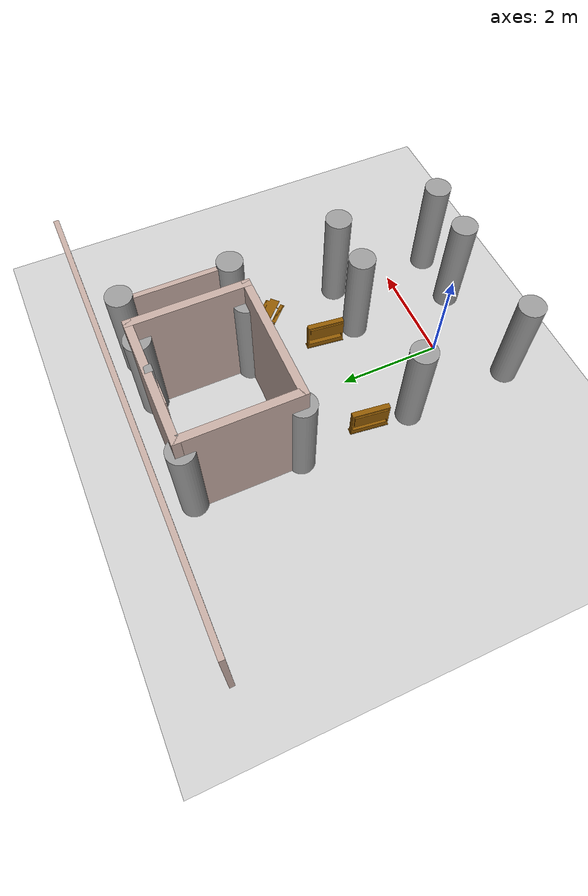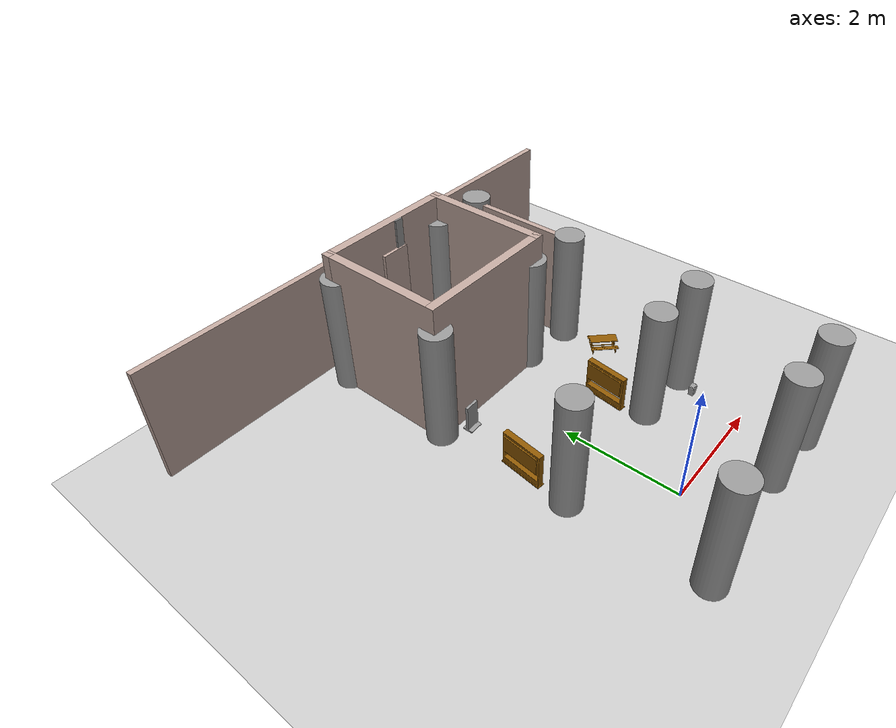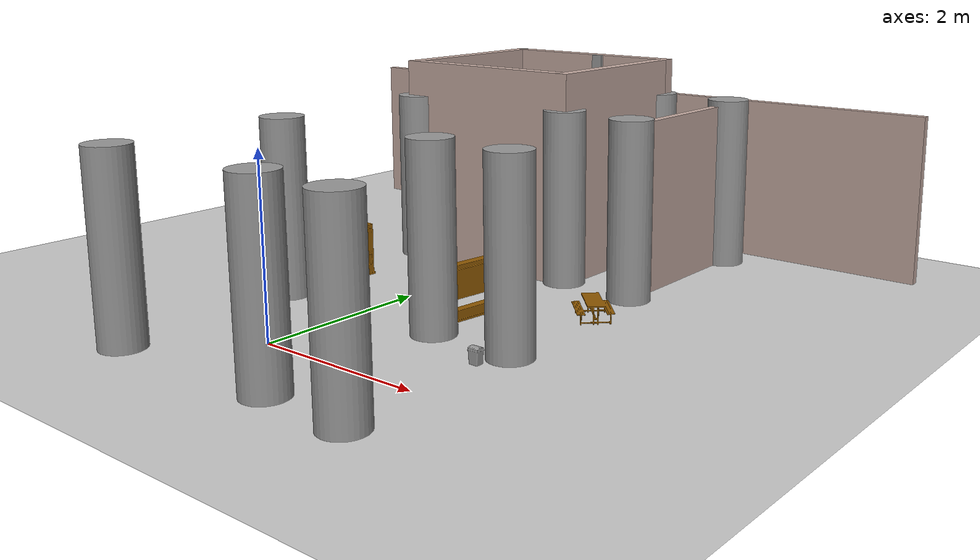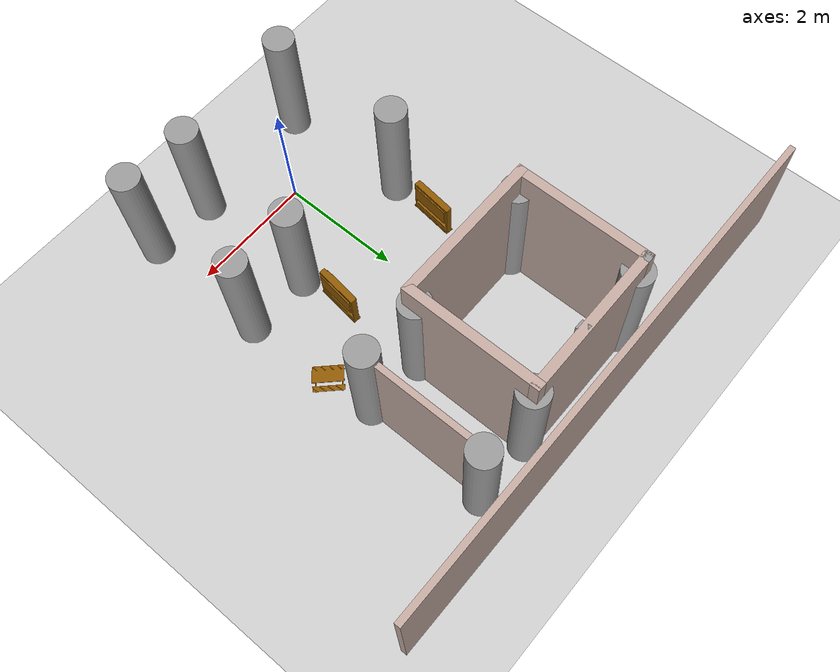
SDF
<sdf version="1.6">
 <world name="default">
  <model name="ground_plane">
   <static>1</static>
   <link name="link">
    <collision name="collision">
     <geometry><plane><normal>0 0 1</normal><size>100 100</size></plane></geometry>
     <surface>
      <contact><collide_bitmask>65535</collide_bitmask></contact>
      <friction><ode><mu>100</mu><mu2>50</mu2></ode></friction>
     </surface>
    </collision>
    <visual name="visual">
     <cast_shadows>0</cast_shadows>
     <geometry><plane><normal>0 0 1</normal><size>100 100</size></plane></geometry>
     <material>
      <script><uri>file://media/materials/scripts/gazebo.material</uri><name>Gazebo/Grey</name></script>
     </material>
    </visual>
   </link>
  </model>
  <model name="gedung_p">
   <pose>2.96636 -2.09069 0 0 -0 0</pose>
   <link name="Wall_108">
    <collision name="Wall_108_Collision">
     <geometry><box><size>2.5 0.15 2.5</size></box></geometry>
     <pose>0 0 1.25 0 -0 0</pose>
    </collision>
    <visual name="Wall_108_Visual">
     <pose>0 0 1.25 0 -0 0</pose>
     <geometry><box><size>2.5 0.15 2.5</size></box></geometry>
     <material>
      <script><uri>file://media/materials/scripts/gazebo.material</uri><name>Gazebo/Grey</name></script>
      <ambient>0.760784 0.662745 0.627451 1</ambient>
     </material>
     <meta><layer>0</layer></meta>
    </visual>
    <pose>-3.04751 7.6698 0 0 -0 0</pose>
   </link>
   <link name="Wall_119">
    <collision name="Wall_119_Collision">
     <geometry><box><size>8.7 0.1 2</size></box></geometry>
     <pose>0 0 1 0 -0 0</pose>
    </collision>
    <visual name="Wall_119_Visual">
     <pose>0 0 1 0 -0 0</pose>
     <geometry><box><size>8.7 0.1 2</size></box></geometry>
     <material>
      <script><uri>file://media/materials/scripts/gazebo.material</uri><name>Gazebo/Grey</name></script>
      <ambient>0.760784 0.662745 0.627451 1</ambient>
     </material>
     <meta><layer>0</layer></meta>
    </visual>
    <pose>-2.97151 8.1548 0 0 -0 0</pose>
   </link>
   <link name="Wall_128">
    <collision name="Wall_128_Collision">
     <geometry><box><size>2.25 0.15 2.5</size></box></geometry>
     <pose>0 0 1.25 0 -0 0</pose>
    </collision>
    <visual name="Wall_128_Visual">
     <pose>0 0 1.25 0 -0 0</pose>
     <geometry><box><size>2.25 0.15 2.5</size></box></geometry>
     <material>
      <script><uri>file://media/materials/scripts/gazebo.material</uri><name>Gazebo/Grey</name></script>
      <ambient>0.760784 0.662745 0.627451 1</ambient>
     </material>
     <meta><layer>0</layer></meta>
    </visual>
    <pose>-4.22251 6.61981 0 0 -0 -1.5708</pose>
   </link>
   <link name="Wall_129">
    <collision name="Wall_129_Collision">
     <geometry><box><size>2.5 0.15 2.5</size></box></geometry>
     <pose>0 0 1.25 0 -0 0</pose>
    </collision>
    <visual name="Wall_129_Visual">
     <pose>0 0 1.25 0 -0 0</pose>
     <geometry><box><size>2.5 0.15 2.5</size></box></geometry>
     <material>
      <script><uri>file://media/materials/scripts/gazebo.material</uri><name>Gazebo/Grey</name></script>
      <ambient>0.760784 0.662745 0.627451 1</ambient>
     </material>
     <meta><layer>0</layer></meta>
    </visual>
    <pose>-3.04751 5.5698 0 0 -0 0</pose>
   </link>
   <link name="Wall_130">
    <collision name="Wall_130_Collision">
     <geometry><box><size>2.25 0.15 2.5</size></box></geometry>
     <pose>0 0 1.25 0 -0 0</pose>
    </collision>
    <visual name="Wall_130_Visual">
     <pose>0 0 1.25 0 -0 0</pose>
     <geometry><box><size>2.25 0.15 2.5</size></box></geometry>
     <material>
      <script><uri>file://media/materials/scripts/gazebo.material</uri><name>Gazebo/Grey</name></script>
      <ambient>0.760784 0.662745 0.627451 1</ambient>
     </material>
     <meta><layer>0</layer></meta>
    </visual>
    <pose>-1.87251 6.61981 0 0 -0 1.5708</pose>
   </link>
   <link name="Wall_132">
    <collision name="Wall_132_Collision">
     <geometry><box><size>2.20004 0.1 2</size></box></geometry>
     <pose>0 0 1 0 -0 0</pose>
    </collision>
    <visual name="Wall_132_Visual">
     <pose>0 0 1 0 -0 0</pose>
     <geometry><box><size>2.20004 0.1 2</size></box></geometry>
     <material>
      <script><uri>file://media/materials/scripts/gazebo.material</uri><name>Gazebo/Grey</name></script>
      <ambient>0.760784 0.662745 0.627451 1</ambient>
     </material>
     <meta><layer>0</layer></meta>
    </visual>
    <pose>-0.943512 6.5908 0 0 -0 -1.5708</pose>
   </link>
   <link name="Wall_272">
    <collision name="Wall_272_Collision">
     <geometry><box><size>0.266945 0.2 2</size></box></geometry>
     <pose>0 0 1 0 -0 0</pose>
    </collision>
    <visual name="Wall_272_Visual">
     <pose>0 0 1 0 -0 0</pose>
     <geometry><box><size>0.266945 0.2 2</size></box></geometry>
     <material>
      <script><uri>file://media/materials/scripts/gazebo.material</uri><name>Gazebo/Grey</name></script>
      <ambient>0.760784 0.662745 0.627451 1</ambient>
     </material>
     <meta><layer>0</layer></meta>
    </visual>
    <pose>-4.06934 1.12605 0 0 -0 0</pose>
   </link>
   <link name="Wall_276">
    <collision name="Wall_276_Collision">
     <geometry><box><size>0.267624 0.2 2</size></box></geometry>
     <pose>0 0 1 0 -0 0</pose>
    </collision>
    <visual name="Wall_276_Visual">
     <pose>0 0 1 0 -0 0</pose>
     <geometry><box><size>0.267624 0.2 2</size></box></geometry>
     <material>
      <script><uri>file://media/materials/scripts/gazebo.material</uri><name>Gazebo/Grey</name></script>
      <ambient>0.760784 0.662745 0.627451 1</ambient>
     </material>
     <meta><layer>0</layer></meta>
    </visual>
    <pose>-4.08846 3.27306 0 0 -0 0.141897</pose>
   </link>
   <link name="Wall_278">
    <collision name="Wall_278_Collision">
     <geometry><box><size>0.5 0.2 2</size></box></geometry>
     <pose>0 0 1 0 -0 0</pose>
    </collision>
    <visual name="Wall_278_Visual">
     <pose>0 0 1 0 -0 0</pose>
     <geometry><box><size>0.5 0.2 2</size></box></geometry>
     <material>
      <script><uri>file://media/materials/scripts/gazebo.material</uri><name>Gazebo/Grey</name></script>
      <ambient>0.760784 0.662745 0.627451 1</ambient>
     </material>
     <meta><layer>0</layer></meta>
    </visual>
    <pose>-3.00554 7.6387 0 0 -0 0</pose>
   </link>
   <link name="Wall_279">
    <collision name="Wall_279_Collision">
     <geometry><box><size>0.15 0.15 2.5</size></box></geometry>
     <pose>0 0 1.25 0 -0 0</pose>
    </collision>
    <visual name="Wall_279_Visual">
     <pose>0 0 1.25 0 -0 0</pose>
     <geometry><box><size>0.15 0.15 2.5</size></box></geometry>
     <material>
      <script><uri>file://media/materials/scripts/gazebo.material</uri><name>Gazebo/Grey</name></script>
      <ambient>1 1 1 1</ambient>
     </material>
     <meta><layer>0</layer></meta>
    </visual>
    <pose>-2.85554 7.6387 0 0 -0 0</pose>
   </link>
   <link name="Wall_281">
    <collision name="Wall_281_Collision">
     <geometry><box><size>0.267624 0.2 2</size></box></geometry>
     <pose>0 0 1 0 -0 0</pose>
    </collision>
    <visual name="Wall_281_Visual">
     <pose>0 0 1 0 -0 0</pose>
     <geometry><box><size>0.267624 0.2 2</size></box></geometry>
     <material>
      <script><uri>file://media/materials/scripts/gazebo.material</uri><name>Gazebo/Grey</name></script>
      <ambient>0.760784 0.662745 0.627451 1</ambient>
     </material>
     <meta><layer>0</layer></meta>
    </visual>
    <pose>-1.92711 3.30175 0 0 -0 -0.141897</pose>
   </link>
   <link name="Wall_283">
    <collision name="Wall_283_Collision">
     <geometry><box><size>0.305633 0.2 2</size></box></geometry>
     <pose>0 0 1 0 -0 0</pose>
    </collision>
    <visual name="Wall_283_Visual">
     <pose>0 0 1 0 -0 0</pose>
     <geometry><box><size>0.305633 0.2 2</size></box></geometry>
     <material>
      <script><uri>file://media/materials/scripts/gazebo.material</uri><name>Gazebo/Grey</name></script>
      <ambient>0.760784 0.662745 0.627451 1</ambient>
     </material>
     <meta><layer>0</layer></meta>
    </visual>
    <pose>-1.90798 1.1404 0 0 -0 -0.09066</pose>
   </link>
   <link name="Wall_289">
    <collision name="Wall_289_Collision">
     <geometry><box><size>0.296112 0.2 2</size></box></geometry>
     <pose>0 0 1 0 -0 0</pose>
    </collision>
    <visual name="Wall_289_Visual">
     <pose>0 0 1 0 -0 0</pose>
     <geometry><box><size>0.296112 0.2 2</size></box></geometry>
     <material>
      <script><uri>file://media/materials/scripts/gazebo.material</uri><name>Gazebo/Grey</name></script>
      <ambient>0.760784 0.662745 0.627451 1</ambient>
     </material>
     <meta><layer>0</layer></meta>
    </visual>
    <pose>-0.841647 3.27306 0 0 -0 0.099669</pose>
   </link>
   <link name="Wall_291">
    <collision name="Wall_291_Collision">
     <geometry><box><size>0.296112 0.2 2</size></box></geometry>
     <pose>0 0 1 0 -0 0</pose>
    </collision>
    <visual name="Wall_291_Visual">
     <pose>0 0 1 0 -0 0</pose>
     <geometry><box><size>0.296112 0.2 2</size></box></geometry>
     <material>
      <script><uri>file://media/materials/scripts/gazebo.material</uri><name>Gazebo/Grey</name></script>
      <ambient>0.760784 0.662745 0.627451 1</ambient>
     </material>
     <meta><layer>0</layer></meta>
    </visual>
    <pose>-0.860774 1.1404 0 0 -0 0.099669</pose>
   </link>
   <link name="Wall_89">
    <collision name="Wall_89_Collision">
     <geometry><box><size>0.15 0.15 2.5</size></box></geometry>
     <pose>0 0 1.25 0 -0 0</pose>
    </collision>
    <visual name="Wall_89_Visual">
     <pose>0 0 1.25 0 -0 0</pose>
     <geometry><box><size>0.15 0.15 2.5</size></box></geometry>
     <material>
      <script><uri>file://media/materials/scripts/gazebo.material</uri><name>Gazebo/Grey</name></script>
      <ambient>1 1 1 1</ambient>
     </material>
     <meta><layer>0</layer></meta>
    </visual>
    <pose>-4.22251 7.6698 0 0 -0 0</pose>
   </link>
   <link name="Wall_96">
    <collision name="Wall_96_Collision">
     <geometry><box><size>0.15 0.15 2.5</size></box></geometry>
     <pose>0 0 1.25 0 -0 0</pose>
    </collision>
    <visual name="Wall_96_Visual">
     <pose>0 0 1.25 0 -0 0</pose>
     <geometry><box><size>0.15 0.15 2.5</size></box></geometry>
     <material>
      <script><uri>file://media/materials/scripts/gazebo.material</uri><name>Gazebo/Grey</name></script>
      <ambient>1 1 1 1</ambient>
     </material>
     <meta><layer>0</layer></meta>
    </visual>
    <pose>-4.22251 7.6698 0 0 -0 0</pose>
   </link>
   <static>1</static>
  </model>
  <model name="tiang_besar_19">
   <link name="link_0">
    <inertial>
     <mass>1</mass>
     <inertia>
      <ixx>0.166667</ixx>
      <ixy>0</ixy>
      <ixz>0</ixz>
      <iyy>0.166667</iyy>
      <iyz>0</iyz>
      <izz>0.166667</izz>
     </inertia>
    </inertial>
    <pose>0.080543 -0.031124 0 0 -0 0</pose>
    <visual name="visual">
     <geometry>
      <mesh><uri>/home/thardi/Gazebo Objek/cylinder sedang.dae</uri><scale>1 1 1.15</scale></mesh>
     </geometry>
     <material>
      <lighting>1</lighting>
      <script><uri>file://media/materials/scripts/gazebo.material</uri><name>Gazebo/Grey</name></script>
      <shader type="vertex"><normal_map>__default__</normal_map></shader>
      <ambient>0.3 0.3 0.3 1</ambient>
      <diffuse>0.7 0.7 0.7 1</diffuse>
      <specular>0.01 0.01 0.01 1</specular>
      <emissive>0 0 0 1</emissive>
     </material>
    </visual>
    <collision name="collision">
     <geometry>
      <mesh><uri>/home/thardi/Gazebo Objek/cylinder sedang.dae</uri><scale>1 1 1.15</scale></mesh>
     </geometry>
     <surface>
      <friction>
       <ode><mu>1.15</mu><mu2>1</mu2><fdir1>0 0 0</fdir1><slip1>0</slip1><slip2>0</slip2></ode>
       <torsional>
        <coefficient>1</coefficient>
        <patch_radius>0</patch_radius>
        <surface_radius>0</surface_radius>
        <use_patch_radius>1</use_patch_radius>
        <ode><slip>0</slip></ode>
       </torsional>
      </friction>
      <bounce><restitution_coefficient>0</restitution_coefficient><threshold>1e+06</threshold></bounce>
      <contact>
       <collide_without_contact>0</collide_without_contact>
       <collide_without_contact_bitmask>1</collide_without_contact_bitmask>
       <collide_bitmask>1</collide_bitmask>
       <ode>
        <soft_cfm>0</soft_cfm>
        <soft_erp>0.2</soft_erp>
        <kp>1e+13</kp>
        <kd>1</kd>
        <max_vel>0.01</max_vel>
        <min_depth>0</min_depth>
       </ode>
       <bullet>
        <split_impulse>1</split_impulse>
        <split_impulse_penetration_threshold>-0.01</split_impulse_penetration_threshold>
        <soft_cfm>0</soft_cfm>
        <soft_erp>0.2</soft_erp>
        <kp>1e+13</kp>
        <kd>1</kd>
       </bullet>
      </contact>
     </surface>
    </collision>
   </link>
   <static>1</static>
   <pose>-1.12364 -0.939016 0 0 -0 0</pose>
  </model>
  <model name="tiang_besar_20">
   <link name="link_0">
    <inertial>
     <mass>1</mass>
     <inertia>
      <ixx>0.166667</ixx>
      <ixy>0</ixy>
      <ixz>0</ixz>
      <iyy>0.166667</iyy>
      <iyz>0</iyz>
      <izz>0.166667</izz>
     </inertia>
    </inertial>
    <pose>0.080543 -0.031124 0 0 -0 0</pose>
    <visual name="visual">
     <geometry>
      <mesh><uri>/home/thardi/Gazebo Objek/cylinder sedang.dae</uri><scale>1 1 1.15</scale></mesh>
     </geometry>
     <material>
      <lighting>1</lighting>
      <script><uri>file://media/materials/scripts/gazebo.material</uri><name>Gazebo/Grey</name></script>
      <shader type="vertex"><normal_map>__default__</normal_map></shader>
      <ambient>0.3 0.3 0.3 1</ambient>
      <diffuse>0.7 0.7 0.7 1</diffuse>
      <specular>0.01 0.01 0.01 1</specular>
      <emissive>0 0 0 1</emissive>
     </material>
    </visual>
    <collision name="collision">
     <geometry>
      <mesh><uri>/home/thardi/Gazebo Objek/cylinder sedang.dae</uri><scale>1 1 1.15</scale></mesh>
     </geometry>
     <surface>
      <friction>
       <ode><mu>1.15</mu><mu2>1</mu2><fdir1>0 0 0</fdir1><slip1>0</slip1><slip2>0</slip2></ode>
       <torsional>
        <coefficient>1</coefficient>
        <patch_radius>0</patch_radius>
        <surface_radius>0</surface_radius>
        <use_patch_radius>1</use_patch_radius>
        <ode><slip>0</slip></ode>
       </torsional>
      </friction>
      <bounce><restitution_coefficient>0</restitution_coefficient><threshold>1e+06</threshold></bounce>
      <contact>
       <collide_without_contact>0</collide_without_contact>
       <collide_without_contact_bitmask>1</collide_without_contact_bitmask>
       <collide_bitmask>1</collide_bitmask>
       <ode>
        <soft_cfm>0</soft_cfm>
        <soft_erp>0.2</soft_erp>
        <kp>1e+13</kp>
        <kd>1</kd>
        <max_vel>0.01</max_vel>
        <min_depth>0</min_depth>
       </ode>
       <bullet>
        <split_impulse>1</split_impulse>
        <split_impulse_penetration_threshold>-0.01</split_impulse_penetration_threshold>
        <soft_cfm>0</soft_cfm>
        <soft_erp>0.2</soft_erp>
        <kp>1e+13</kp>
        <kd>1</kd>
       </bullet>
      </contact>
     </surface>
    </collision>
   </link>
   <static>1</static>
   <pose>0.989263 -0.842828 0 0 -0 0</pose>
  </model>
  <model name="tiang_besar_22">
   <link name="link_0">
    <inertial>
     <mass>1</mass>
     <inertia>
      <ixx>0.166667</ixx>
      <ixy>0</ixy>
      <ixz>0</ixz>
      <iyy>0.166667</iyy>
      <iyz>0</iyz>
      <izz>0.166667</izz>
     </inertia>
    </inertial>
    <pose>0.080543 -0.031124 0 0 -0 0</pose>
    <visual name="visual">
     <geometry>
      <mesh><uri>/home/thardi/Gazebo Objek/cylinder sedang.dae</uri><scale>1 1 1.15</scale></mesh>
     </geometry>
     <material>
      <lighting>1</lighting>
      <script><uri>file://media/materials/scripts/gazebo.material</uri><name>Gazebo/Grey</name></script>
      <shader type="vertex"><normal_map>__default__</normal_map></shader>
      <ambient>0.3 0.3 0.3 1</ambient>
      <diffuse>0.7 0.7 0.7 1</diffuse>
      <specular>0.01 0.01 0.01 1</specular>
      <emissive>0 0 0 1</emissive>
     </material>
    </visual>
    <collision name="collision">
     <geometry>
      <mesh><uri>/home/thardi/Gazebo Objek/cylinder sedang.dae</uri><scale>1 1 1.15</scale></mesh>
     </geometry>
     <surface>
      <friction>
       <ode><mu>1.15</mu><mu2>1</mu2><fdir1>0 0 0</fdir1><slip1>0</slip1><slip2>0</slip2></ode>
       <torsional>
        <coefficient>1</coefficient>
        <patch_radius>0</patch_radius>
        <surface_radius>0</surface_radius>
        <use_patch_radius>1</use_patch_radius>
        <ode><slip>0</slip></ode>
       </torsional>
      </friction>
      <bounce><restitution_coefficient>0</restitution_coefficient><threshold>1e+06</threshold></bounce>
      <contact>
       <collide_without_contact>0</collide_without_contact>
       <collide_without_contact_bitmask>1</collide_without_contact_bitmask>
       <collide_bitmask>1</collide_bitmask>
       <ode>
        <soft_cfm>0</soft_cfm>
        <soft_erp>0.2</soft_erp>
        <kp>1e+13</kp>
        <kd>1</kd>
        <max_vel>0.01</max_vel>
        <min_depth>0</min_depth>
       </ode>
       <bullet>
        <split_impulse>1</split_impulse>
        <split_impulse_penetration_threshold>-0.01</split_impulse_penetration_threshold>
        <soft_cfm>0</soft_cfm>
        <soft_erp>0.2</soft_erp>
        <kp>1e+13</kp>
        <kd>1</kd>
       </bullet>
      </contact>
     </surface>
    </collision>
   </link>
   <static>1</static>
   <pose>2.07144 -0.890464 0 0 -0 0</pose>
  </model>
  <model name="tiang_besar_26">
   <link name="link_0">
    <inertial>
     <mass>1</mass>
     <inertia>
      <ixx>0.166667</ixx>
      <ixy>0</ixy>
      <ixz>0</ixz>
      <iyy>0.166667</iyy>
      <iyz>0</iyz>
      <izz>0.166667</izz>
     </inertia>
    </inertial>
    <pose>0.080543 -0.031124 0 0 -0 0</pose>
    <visual name="visual">
     <geometry>
      <mesh><uri>/home/thardi/Gazebo Objek/cylinder sedang.dae</uri><scale>1 1 1.15</scale></mesh>
     </geometry>
     <material>
      <lighting>1</lighting>
      <script><uri>file://media/materials/scripts/gazebo.material</uri><name>Gazebo/Grey</name></script>
      <shader type="vertex"><normal_map>__default__</normal_map></shader>
      <ambient>0.3 0.3 0.3 1</ambient>
      <diffuse>0.7 0.7 0.7 1</diffuse>
      <specular>0.01 0.01 0.01 1</specular>
      <emissive>0 0 0 1</emissive>
     </material>
    </visual>
    <collision name="collision">
     <geometry>
      <mesh><uri>/home/thardi/Gazebo Objek/cylinder sedang.dae</uri><scale>1 1 1.15</scale></mesh>
     </geometry>
     <surface>
      <friction>
       <ode><mu>1.15</mu><mu2>1</mu2><fdir1>0 0 0</fdir1><slip1>0</slip1><slip2>0</slip2></ode>
       <torsional>
        <coefficient>1</coefficient>
        <patch_radius>0</patch_radius>
        <surface_radius>0</surface_radius>
        <use_patch_radius>1</use_patch_radius>
        <ode><slip>0</slip></ode>
       </torsional>
      </friction>
      <bounce><restitution_coefficient>0</restitution_coefficient><threshold>1e+06</threshold></bounce>
      <contact>
       <collide_without_contact>0</collide_without_contact>
       <collide_without_contact_bitmask>1</collide_without_contact_bitmask>
       <collide_bitmask>1</collide_bitmask>
       <ode>
        <soft_cfm>0</soft_cfm>
        <soft_erp>0.2</soft_erp>
        <kp>1e+13</kp>
        <kd>1</kd>
        <max_vel>0.01</max_vel>
        <min_depth>0</min_depth>
       </ode>
       <bullet>
        <split_impulse>1</split_impulse>
        <split_impulse_penetration_threshold>-0.01</split_impulse_penetration_threshold>
        <soft_cfm>0</soft_cfm>
        <soft_erp>0.2</soft_erp>
        <kp>1e+13</kp>
        <kd>1</kd>
       </bullet>
      </contact>
     </surface>
    </collision>
   </link>
   <static>1</static>
   <pose>-1.31519 3.50708 0 0 -0 0</pose>
  </model>
  <model name="tiang_besar_27">
   <link name="link_0">
    <inertial>
     <mass>1</mass>
     <inertia>
      <ixx>0.166667</ixx>
      <ixy>0</ixy>
      <ixz>0</ixz>
      <iyy>0.166667</iyy>
      <iyz>0</iyz>
      <izz>0.166667</izz>
     </inertia>
    </inertial>
    <pose>0.080543 -0.031124 0 0 -0 0</pose>
    <visual name="visual">
     <geometry>
      <mesh><uri>/home/thardi/Gazebo Objek/cylinder sedang.dae</uri><scale>1 1 1.15</scale></mesh>
     </geometry>
     <material>
      <lighting>1</lighting>
      <script><uri>file://media/materials/scripts/gazebo.material</uri><name>Gazebo/Grey</name></script>
      <shader type="vertex"><normal_map>__default__</normal_map></shader>
      <ambient>0.3 0.3 0.3 1</ambient>
      <diffuse>0.7 0.7 0.7 1</diffuse>
      <specular>0.01 0.01 0.01 1</specular>
      <emissive>0 0 0 1</emissive>
     </material>
    </visual>
    <collision name="collision">
     <geometry>
      <mesh><uri>/home/thardi/Gazebo Objek/cylinder sedang.dae</uri><scale>1 1 1.15</scale></mesh>
     </geometry>
     <surface>
      <friction>
       <ode><mu>1.15</mu><mu2>1</mu2><fdir1>0 0 0</fdir1><slip1>0</slip1><slip2>0</slip2></ode>
       <torsional>
        <coefficient>1</coefficient>
        <patch_radius>0</patch_radius>
        <surface_radius>0</surface_radius>
        <use_patch_radius>1</use_patch_radius>
        <ode><slip>0</slip></ode>
       </torsional>
      </friction>
      <bounce><restitution_coefficient>0</restitution_coefficient><threshold>1e+06</threshold></bounce>
      <contact>
       <collide_without_contact>0</collide_without_contact>
       <collide_without_contact_bitmask>1</collide_without_contact_bitmask>
       <collide_bitmask>1</collide_bitmask>
       <ode>
        <soft_cfm>0</soft_cfm>
        <soft_erp>0.2</soft_erp>
        <kp>1e+13</kp>
        <kd>1</kd>
        <max_vel>0.01</max_vel>
        <min_depth>0</min_depth>
       </ode>
       <bullet>
        <split_impulse>1</split_impulse>
        <split_impulse_penetration_threshold>-0.01</split_impulse_penetration_threshold>
        <soft_cfm>0</soft_cfm>
        <soft_erp>0.2</soft_erp>
        <kp>1e+13</kp>
        <kd>1</kd>
       </bullet>
      </contact>
     </surface>
    </collision>
   </link>
   <static>1</static>
   <pose>-1.30845 5.57273 0 0 -0 0</pose>
  </model>
  <model name="tiang_besar_28">
   <link name="link_0">
    <inertial>
     <mass>1</mass>
     <inertia>
      <ixx>0.166667</ixx>
      <ixy>0</ixy>
      <ixz>0</ixz>
      <iyy>0.166667</iyy>
      <iyz>0</iyz>
      <izz>0.166667</izz>
     </inertia>
    </inertial>
    <pose>0.080543 -0.031124 0 0 -0 0</pose>
    <visual name="visual">
     <geometry>
      <mesh><uri>/home/thardi/Gazebo Objek/cylinder sedang.dae</uri><scale>1 1 1.15</scale></mesh>
     </geometry>
     <material>
      <lighting>1</lighting>
      <script><uri>file://media/materials/scripts/gazebo.material</uri><name>Gazebo/Grey</name></script>
      <shader type="vertex"><normal_map>__default__</normal_map></shader>
      <ambient>0.3 0.3 0.3 1</ambient>
      <diffuse>0.7 0.7 0.7 1</diffuse>
      <specular>0.01 0.01 0.01 1</specular>
      <emissive>0 0 0 1</emissive>
     </material>
    </visual>
    <collision name="collision">
     <geometry>
      <mesh><uri>/home/thardi/Gazebo Objek/cylinder sedang.dae</uri><scale>1 1 1.15</scale></mesh>
     </geometry>
     <surface>
      <friction>
       <ode><mu>1.15</mu><mu2>1</mu2><fdir1>0 0 0</fdir1><slip1>0</slip1><slip2>0</slip2></ode>
       <torsional>
        <coefficient>1</coefficient>
        <patch_radius>0</patch_radius>
        <surface_radius>0</surface_radius>
        <use_patch_radius>1</use_patch_radius>
        <ode><slip>0</slip></ode>
       </torsional>
      </friction>
      <bounce><restitution_coefficient>0</restitution_coefficient><threshold>1e+06</threshold></bounce>
      <contact>
       <collide_without_contact>0</collide_without_contact>
       <collide_without_contact_bitmask>1</collide_without_contact_bitmask>
       <collide_bitmask>1</collide_bitmask>
       <ode>
        <soft_cfm>0</soft_cfm>
        <soft_erp>0.2</soft_erp>
        <kp>1e+13</kp>
        <kd>1</kd>
        <max_vel>0.01</max_vel>
        <min_depth>0</min_depth>
       </ode>
       <bullet>
        <split_impulse>1</split_impulse>
        <split_impulse_penetration_threshold>-0.01</split_impulse_penetration_threshold>
        <soft_cfm>0</soft_cfm>
        <soft_erp>0.2</soft_erp>
        <kp>1e+13</kp>
        <kd>1</kd>
       </bullet>
      </contact>
     </surface>
    </collision>
   </link>
   <static>1</static>
   <pose>0.964458 5.54701 0 0 -0 0</pose>
  </model>
  <model name="tiang_besar_30">
   <link name="link_0">
    <inertial>
     <mass>1</mass>
     <inertia>
      <ixx>0.166667</ixx>
      <ixy>0</ixy>
      <ixz>0</ixz>
      <iyy>0.166667</iyy>
      <iyz>0</iyz>
      <izz>0.166667</izz>
     </inertia>
    </inertial>
    <pose>0.080543 -0.031124 0 0 -0 0</pose>
    <visual name="visual">
     <geometry>
      <mesh><uri>/home/thardi/Gazebo Objek/cylinder sedang.dae</uri><scale>1 1 1.15</scale></mesh>
     </geometry>
     <material>
      <lighting>1</lighting>
      <script><uri>file://media/materials/scripts/gazebo.material</uri><name>Gazebo/Grey</name></script>
      <shader type="vertex"><normal_map>__default__</normal_map></shader>
      <ambient>0.3 0.3 0.3 1</ambient>
      <diffuse>0.7 0.7 0.7 1</diffuse>
      <specular>0.01 0.01 0.01 1</specular>
      <emissive>0 0 0 1</emissive>
     </material>
    </visual>
    <collision name="collision">
     <geometry>
      <mesh><uri>/home/thardi/Gazebo Objek/cylinder sedang.dae</uri><scale>1 1 1.15</scale></mesh>
     </geometry>
     <surface>
      <friction>
       <ode><mu>1.15</mu><mu2>1</mu2><fdir1>0 0 0</fdir1><slip1>0</slip1><slip2>0</slip2></ode>
       <torsional>
        <coefficient>1</coefficient>
        <patch_radius>0</patch_radius>
        <surface_radius>0</surface_radius>
        <use_patch_radius>1</use_patch_radius>
        <ode><slip>0</slip></ode>
       </torsional>
      </friction>
      <bounce><restitution_coefficient>0</restitution_coefficient><threshold>1e+06</threshold></bounce>
      <contact>
       <collide_without_contact>0</collide_without_contact>
       <collide_without_contact_bitmask>1</collide_without_contact_bitmask>
       <collide_bitmask>1</collide_bitmask>
       <ode>
        <soft_cfm>0</soft_cfm>
        <soft_erp>0.2</soft_erp>
        <kp>1e+13</kp>
        <kd>1</kd>
        <max_vel>0.01</max_vel>
        <min_depth>0</min_depth>
       </ode>
       <bullet>
        <split_impulse>1</split_impulse>
        <split_impulse_penetration_threshold>-0.01</split_impulse_penetration_threshold>
        <soft_cfm>0</soft_cfm>
        <soft_erp>0.2</soft_erp>
        <kp>1e+13</kp>
        <kd>1</kd>
       </bullet>
      </contact>
     </surface>
    </collision>
   </link>
   <static>1</static>
   <pose>-1.21202 1.23853 0 0 -0 0</pose>
  </model>
  <model name="tiang_besar_31">
   <link name="link_0">
    <inertial>
     <mass>1</mass>
     <inertia>
      <ixx>0.166667</ixx>
      <ixy>0</ixy>
      <ixz>0</ixz>
      <iyy>0.166667</iyy>
      <iyz>0</iyz>
      <izz>0.166667</izz>
     </inertia>
    </inertial>
    <pose>0.080543 -0.031124 0 0 -0 0</pose>
    <visual name="visual">
     <geometry>
      <mesh><uri>/home/thardi/Gazebo Objek/cylinder sedang.dae</uri><scale>1 1 1.15</scale></mesh>
     </geometry>
     <material>
      <lighting>1</lighting>
      <script><uri>file://media/materials/scripts/gazebo.material</uri><name>Gazebo/Grey</name></script>
      <shader type="vertex"><normal_map>__default__</normal_map></shader>
      <ambient>0.3 0.3 0.3 1</ambient>
      <diffuse>0.7 0.7 0.7 1</diffuse>
      <specular>0.01 0.01 0.01 1</specular>
      <emissive>0 0 0 1</emissive>
     </material>
    </visual>
    <collision name="collision">
     <geometry>
      <mesh><uri>/home/thardi/Gazebo Objek/cylinder sedang.dae</uri><scale>1 1 1.15</scale></mesh>
     </geometry>
     <surface>
      <friction>
       <ode><mu>1.15</mu><mu2>1</mu2><fdir1>0 0 0</fdir1><slip1>0</slip1><slip2>0</slip2></ode>
       <torsional>
        <coefficient>1</coefficient>
        <patch_radius>0</patch_radius>
        <surface_radius>0</surface_radius>
        <use_patch_radius>1</use_patch_radius>
        <ode><slip>0</slip></ode>
       </torsional>
      </friction>
      <bounce><restitution_coefficient>0</restitution_coefficient><threshold>1e+06</threshold></bounce>
      <contact>
       <collide_without_contact>0</collide_without_contact>
       <collide_without_contact_bitmask>1</collide_without_contact_bitmask>
       <collide_bitmask>1</collide_bitmask>
       <ode>
        <soft_cfm>0</soft_cfm>
        <soft_erp>0.2</soft_erp>
        <kp>1e+13</kp>
        <kd>1</kd>
        <max_vel>0.01</max_vel>
        <min_depth>0</min_depth>
       </ode>
       <bullet>
        <split_impulse>1</split_impulse>
        <split_impulse_penetration_threshold>-0.01</split_impulse_penetration_threshold>
        <soft_cfm>0</soft_cfm>
        <soft_erp>0.2</soft_erp>
        <kp>1e+13</kp>
        <kd>1</kd>
       </bullet>
      </contact>
     </surface>
    </collision>
   </link>
   <static>1</static>
   <pose>1.03445 1.26935 0 0 -0 0</pose>
  </model>
  <model name="tiang_besar_32">
   <link name="link_0">
    <inertial>
     <mass>1</mass>
     <inertia>
      <ixx>0.166667</ixx>
      <ixy>0</ixy>
      <ixz>0</ixz>
      <iyy>0.166667</iyy>
      <iyz>0</iyz>
      <izz>0.166667</izz>
     </inertia>
    </inertial>
    <pose>0.080543 -0.031124 0 0 -0 0</pose>
    <visual name="visual">
     <geometry>
      <mesh><uri>/home/thardi/Gazebo Objek/cylinder sedang.dae</uri><scale>1 1 1.15</scale></mesh>
     </geometry>
     <material>
      <lighting>1</lighting>
      <script><uri>file://media/materials/scripts/gazebo.material</uri><name>Gazebo/Grey</name></script>
      <shader type="vertex"><normal_map>__default__</normal_map></shader>
      <ambient>0.3 0.3 0.3 1</ambient>
      <diffuse>0.7 0.7 0.7 1</diffuse>
      <specular>0.01 0.01 0.01 1</specular>
      <emissive>0 0 0 1</emissive>
     </material>
    </visual>
    <collision name="collision">
     <geometry>
      <mesh><uri>/home/thardi/Gazebo Objek/cylinder sedang.dae</uri><scale>1 1 1.15</scale></mesh>
     </geometry>
     <surface>
      <friction>
       <ode><mu>1.15</mu><mu2>1</mu2><fdir1>0 0 0</fdir1><slip1>0</slip1><slip2>0</slip2></ode>
       <torsional>
        <coefficient>1</coefficient>
        <patch_radius>0</patch_radius>
        <surface_radius>0</surface_radius>
        <use_patch_radius>1</use_patch_radius>
        <ode><slip>0</slip></ode>
       </torsional>
      </friction>
      <bounce><restitution_coefficient>0</restitution_coefficient><threshold>1e+06</threshold></bounce>
      <contact>
       <collide_without_contact>0</collide_without_contact>
       <collide_without_contact_bitmask>1</collide_without_contact_bitmask>
       <collide_bitmask>1</collide_bitmask>
       <ode>
        <soft_cfm>0</soft_cfm>
        <soft_erp>0.2</soft_erp>
        <kp>1e+13</kp>
        <kd>1</kd>
        <max_vel>0.01</max_vel>
        <min_depth>0</min_depth>
       </ode>
       <bullet>
        <split_impulse>1</split_impulse>
        <split_impulse_penetration_threshold>-0.01</split_impulse_penetration_threshold>
        <soft_cfm>0</soft_cfm>
        <soft_erp>0.2</soft_erp>
        <kp>1e+13</kp>
        <kd>1</kd>
       </bullet>
      </contact>
     </surface>
    </collision>
   </link>
   <static>1</static>
   <pose>2.09278 1.23444 0 0 -0 0</pose>
  </model>
  <model name="tiang_besar_33">
   <link name="link_0">
    <inertial>
     <mass>1</mass>
     <inertia>
      <ixx>0.166667</ixx>
      <ixy>0</ixy>
      <ixz>0</ixz>
      <iyy>0.166667</iyy>
      <iyz>0</iyz>
      <izz>0.166667</izz>
     </inertia>
    </inertial>
    <pose>0.080543 -0.031124 0 0 -0 0</pose>
    <visual name="visual">
     <geometry>
      <mesh><uri>/home/thardi/Gazebo Objek/cylinder sedang.dae</uri><scale>1 1 1.15</scale></mesh>
     </geometry>
     <material>
      <lighting>1</lighting>
      <script><uri>file://media/materials/scripts/gazebo.material</uri><name>Gazebo/Grey</name></script>
      <shader type="vertex"><normal_map>__default__</normal_map></shader>
      <ambient>0.3 0.3 0.3 1</ambient>
      <diffuse>0.7 0.7 0.7 1</diffuse>
      <specular>0.01 0.01 0.01 1</specular>
      <emissive>0 0 0 1</emissive>
     </material>
    </visual>
    <collision name="collision">
     <geometry>
      <mesh><uri>/home/thardi/Gazebo Objek/cylinder sedang.dae</uri><scale>1 1 1.15</scale></mesh>
     </geometry>
     <surface>
      <friction>
       <ode><mu>1.15</mu><mu2>1</mu2><fdir1>0 0 0</fdir1><slip1>0</slip1><slip2>0</slip2></ode>
       <torsional>
        <coefficient>1</coefficient>
        <patch_radius>0</patch_radius>
        <surface_radius>0</surface_radius>
        <use_patch_radius>1</use_patch_radius>
        <ode><slip>0</slip></ode>
       </torsional>
      </friction>
      <bounce><restitution_coefficient>0</restitution_coefficient><threshold>1e+06</threshold></bounce>
      <contact>
       <collide_without_contact>0</collide_without_contact>
       <collide_without_contact_bitmask>1</collide_without_contact_bitmask>
       <collide_bitmask>1</collide_bitmask>
       <ode>
        <soft_cfm>0</soft_cfm>
        <soft_erp>0.2</soft_erp>
        <kp>1e+13</kp>
        <kd>1</kd>
        <max_vel>0.01</max_vel>
        <min_depth>0</min_depth>
       </ode>
       <bullet>
        <split_impulse>1</split_impulse>
        <split_impulse_penetration_threshold>-0.01</split_impulse_penetration_threshold>
        <soft_cfm>0</soft_cfm>
        <soft_erp>0.2</soft_erp>
        <kp>1e+13</kp>
        <kd>1</kd>
       </bullet>
      </contact>
     </surface>
    </collision>
   </link>
   <static>1</static>
   <pose>0.974097 3.56273 0 0 -0 0</pose>
  </model>
  <model name="tiang_besar_34">
   <link name="link_0">
    <inertial>
     <mass>1</mass>
     <inertia>
      <ixx>0.166667</ixx>
      <ixy>0</ixy>
      <ixz>0</ixz>
      <iyy>0.166667</iyy>
      <iyz>0</iyz>
      <izz>0.166667</izz>
     </inertia>
    </inertial>
    <pose>0.080543 -0.031124 0 0 -0 0</pose>
    <visual name="visual">
     <geometry>
      <mesh><uri>/home/thardi/Gazebo Objek/cylinder sedang.dae</uri><scale>1 1 1.15</scale></mesh>
     </geometry>
     <material>
      <lighting>1</lighting>
      <script><uri>file://media/materials/scripts/gazebo.material</uri><name>Gazebo/Grey</name></script>
      <shader type="vertex"><normal_map>__default__</normal_map></shader>
      <ambient>0.3 0.3 0.3 1</ambient>
      <diffuse>0.7 0.7 0.7 1</diffuse>
      <specular>0.01 0.01 0.01 1</specular>
      <emissive>0 0 0 1</emissive>
     </material>
    </visual>
    <collision name="collision">
     <geometry>
      <mesh><uri>/home/thardi/Gazebo Objek/cylinder sedang.dae</uri><scale>1 1 1.15</scale></mesh>
     </geometry>
     <surface>
      <friction>
       <ode><mu>1.15</mu><mu2>1</mu2><fdir1>0 0 0</fdir1><slip1>0</slip1><slip2>0</slip2></ode>
       <torsional>
        <coefficient>1</coefficient>
        <patch_radius>0</patch_radius>
        <surface_radius>0</surface_radius>
        <use_patch_radius>1</use_patch_radius>
        <ode><slip>0</slip></ode>
       </torsional>
      </friction>
      <bounce><restitution_coefficient>0</restitution_coefficient><threshold>1e+06</threshold></bounce>
      <contact>
       <collide_without_contact>0</collide_without_contact>
       <collide_without_contact_bitmask>1</collide_without_contact_bitmask>
       <collide_bitmask>1</collide_bitmask>
       <ode>
        <soft_cfm>0</soft_cfm>
        <soft_erp>0.2</soft_erp>
        <kp>1e+13</kp>
        <kd>1</kd>
        <max_vel>0.01</max_vel>
        <min_depth>0</min_depth>
       </ode>
       <bullet>
        <split_impulse>1</split_impulse>
        <split_impulse_penetration_threshold>-0.01</split_impulse_penetration_threshold>
        <soft_cfm>0</soft_cfm>
        <soft_erp>0.2</soft_erp>
        <kp>1e+13</kp>
        <kd>1</kd>
       </bullet>
      </contact>
     </surface>
    </collision>
   </link>
   <static>1</static>
   <pose>1.94612 3.49011 0 0 -0 0</pose>
  </model>
  <model name="tiang_besar_35">
   <link name="link_0">
    <inertial>
     <mass>1</mass>
     <inertia>
      <ixx>0.166667</ixx>
      <ixy>0</ixy>
      <ixz>0</ixz>
      <iyy>0.166667</iyy>
      <iyz>0</iyz>
      <izz>0.166667</izz>
     </inertia>
    </inertial>
    <pose>0.080543 -0.031124 0 0 -0 0</pose>
    <visual name="visual">
     <geometry>
      <mesh><uri>/home/thardi/Gazebo Objek/cylinder sedang.dae</uri><scale>1 1 1.15</scale></mesh>
     </geometry>
     <material>
      <lighting>1</lighting>
      <script><uri>file://media/materials/scripts/gazebo.material</uri><name>Gazebo/Grey</name></script>
      <shader type="vertex"><normal_map>__default__</normal_map></shader>
      <ambient>0.3 0.3 0.3 1</ambient>
      <diffuse>0.7 0.7 0.7 1</diffuse>
      <specular>0.01 0.01 0.01 1</specular>
      <emissive>0 0 0 1</emissive>
     </material>
    </visual>
    <collision name="collision">
     <geometry>
      <mesh><uri>/home/thardi/Gazebo Objek/cylinder sedang.dae</uri><scale>1 1 1.15</scale></mesh>
     </geometry>
     <surface>
      <friction>
       <ode><mu>1.15</mu><mu2>1</mu2><fdir1>0 0 0</fdir1><slip1>0</slip1><slip2>0</slip2></ode>
       <torsional>
        <coefficient>1</coefficient>
        <patch_radius>0</patch_radius>
        <surface_radius>0</surface_radius>
        <use_patch_radius>1</use_patch_radius>
        <ode><slip>0</slip></ode>
       </torsional>
      </friction>
      <bounce><restitution_coefficient>0</restitution_coefficient><threshold>1e+06</threshold></bounce>
      <contact>
       <collide_without_contact>0</collide_without_contact>
       <collide_without_contact_bitmask>1</collide_without_contact_bitmask>
       <collide_bitmask>1</collide_bitmask>
       <ode>
        <soft_cfm>0</soft_cfm>
        <soft_erp>0.2</soft_erp>
        <kp>1e+13</kp>
        <kd>1</kd>
        <max_vel>0.01</max_vel>
        <min_depth>0</min_depth>
       </ode>
       <bullet>
        <split_impulse>1</split_impulse>
        <split_impulse_penetration_threshold>-0.01</split_impulse_penetration_threshold>
        <soft_cfm>0</soft_cfm>
        <soft_erp>0.2</soft_erp>
        <kp>1e+13</kp>
        <kd>1</kd>
       </bullet>
      </contact>
     </surface>
    </collision>
   </link>
   <static>1</static>
   <pose>1.99106 5.55595 0 0 -0 0</pose>
  </model>
  <model name="divo_0">
   <link name="link_0">
    <inertial>
     <mass>1</mass>
     <inertia>
      <ixx>0.166667</ixx>
      <ixy>0</ixy>
      <ixz>0</ixz>
      <iyy>0.166667</iyy>
      <iyz>0</iyz>
      <izz>0.166667</izz>
     </inertia>
    </inertial>
    <visual name="visual">
     <geometry><mesh><uri>/home/thardi/Gazebo Objek/DiVO.dae</uri><scale>0.3 0.3 0.3</scale></mesh></geometry>
     <material>
      <lighting>1</lighting>
      <script><uri>file://media/materials/scripts/gazebo.material</uri><name>Gazebo/Grey</name></script>
      <shader type="vertex"><normal_map>__default__</normal_map></shader>
      <ambient>0.729 0.741 0.714 1</ambient>
      <diffuse>0.729 0.741 0.714 1</diffuse>
      <specular>0.729 0.741 0.714 1</specular>
      <emissive>0.729 0.741 0.714 1</emissive>
     </material>
    </visual>
    <collision name="collision">
     <geometry><mesh><uri>/home/thardi/Gazebo Objek/DiVO.dae</uri><scale>0.3 0.3 0.3</scale></mesh></geometry>
     <surface>
      <friction>
       <ode><mu>1</mu><mu2>1</mu2><fdir1>0 0 0</fdir1><slip1>0</slip1><slip2>0</slip2></ode>
       <torsional>
        <coefficient>1</coefficient>
        <patch_radius>0</patch_radius>
        <surface_radius>0</surface_radius>
        <use_patch_radius>1</use_patch_radius>
        <ode><slip>0</slip></ode>
       </torsional>
      </friction>
      <bounce><restitution_coefficient>0</restitution_coefficient><threshold>1e+06</threshold></bounce>
      <contact>
       <collide_without_contact>0</collide_without_contact>
       <collide_without_contact_bitmask>1</collide_without_contact_bitmask>
       <collide_bitmask>1</collide_bitmask>
       <ode>
        <soft_cfm>0</soft_cfm>
        <soft_erp>0.2</soft_erp>
        <kp>1e+13</kp>
        <kd>1</kd>
        <max_vel>0.01</max_vel>
        <min_depth>0</min_depth>
       </ode>
       <bullet>
        <split_impulse>1</split_impulse>
        <split_impulse_penetration_threshold>-0.01</split_impulse_penetration_threshold>
        <soft_cfm>0</soft_cfm>
        <soft_erp>0.2</soft_erp>
        <kp>1e+13</kp>
        <kd>1</kd>
       </bullet>
      </contact>
     </surface>
    </collision>
   </link>
   <static>1</static>
   <pose>-0.820039 3.22384 0 0 0 -1.55054</pose>
  </model>
  <model name="papan">
   <link name="link_10">
    <inertial>
     <mass>1</mass>
     <inertia>
      <ixx>0.166667</ixx>
      <ixy>0</ixy>
      <ixz>0</ixz>
      <iyy>0.166667</iyy>
      <iyz>0</iyz>
      <izz>0.166667</izz>
     </inertia>
    </inertial>
    <visual name="visual">
     <geometry><mesh><uri>/home/thardi/Gazebo Objek/papan.dae</uri><scale>0.05 0.05 0.05</scale></mesh></geometry>
     <material>
      <lighting>1</lighting>
      <script><uri>file://media/materials/scripts/gazebo.material</uri><name>Gazebo/Grey</name></script>
      <shader type="vertex"><normal_map>__default__</normal_map></shader>
      <ambient>0.561 0.349 0.008 1</ambient>
      <diffuse>0.561 0.349 0.008 1</diffuse>
      <specular>0.561 0.349 0.008 1</specular>
      <emissive>0.561 0.349 0.008 1</emissive>
     </material>
    </visual>
    <collision name="collision">
     <geometry><mesh><uri>/home/thardi/Gazebo Objek/papan.dae</uri><scale>0.05 0.05 0.05</scale></mesh></geometry>
     <surface>
      <friction>
       <ode><mu>1</mu><mu2>1</mu2><fdir1>0 0 0</fdir1><slip1>0</slip1><slip2>0</slip2></ode>
       <torsional>
        <coefficient>1</coefficient>
        <patch_radius>0</patch_radius>
        <surface_radius>0</surface_radius>
        <use_patch_radius>1</use_patch_radius>
        <ode><slip>0</slip></ode>
       </torsional>
      </friction>
      <bounce><restitution_coefficient>0</restitution_coefficient><threshold>1e+06</threshold></bounce>
      <contact>
       <collide_without_contact>0</collide_without_contact>
       <collide_without_contact_bitmask>1</collide_without_contact_bitmask>
       <collide_bitmask>1</collide_bitmask>
       <ode>
        <soft_cfm>0</soft_cfm>
        <soft_erp>0.2</soft_erp>
        <kp>1e+13</kp>
        <kd>1</kd>
        <max_vel>0.01</max_vel>
        <min_depth>0</min_depth>
       </ode>
       <bullet>
        <split_impulse>1</split_impulse>
        <split_impulse_penetration_threshold>-0.01</split_impulse_penetration_threshold>
        <soft_cfm>0</soft_cfm>
        <soft_erp>0.2</soft_erp>
        <kp>1e+13</kp>
        <kd>1</kd>
       </bullet>
      </contact>
     </surface>
    </collision>
   </link>
   <static>1</static>
   <pose>-0.957594 2.39334 0 0 0 -1.69179</pose>
  </model>
  <model name="papan_clone">
   <link name="link_10">
    <inertial>
     <mass>1</mass>
     <inertia>
      <ixx>0.166667</ixx>
      <ixy>0</ixy>
      <ixz>0</ixz>
      <iyy>0.166667</iyy>
      <iyz>0</iyz>
      <izz>0.166667</izz>
     </inertia>
    </inertial>
    <visual name="visual">
     <geometry><mesh><uri>/home/thardi/Gazebo Objek/papan.dae</uri><scale>0.05 0.05 0.05</scale></mesh></geometry>
     <material>
      <lighting>1</lighting>
      <script><uri>file://media/materials/scripts/gazebo.material</uri><name>Gazebo/Grey</name></script>
      <shader type="vertex"><normal_map>__default__</normal_map></shader>
      <ambient>0.561 0.349 0.008 1</ambient>
      <diffuse>0.561 0.349 0.008 1</diffuse>
      <specular>0.561 0.349 0.008 1</specular>
      <emissive>0.561 0.349 0.008 1</emissive>
     </material>
    </visual>
    <collision name="collision">
     <geometry><mesh><uri>/home/thardi/Gazebo Objek/papan.dae</uri><scale>0.05 0.05 0.05</scale></mesh></geometry>
     <surface>
      <friction>
       <ode><mu>1</mu><mu2>1</mu2><fdir1>0 0 0</fdir1><slip1>0</slip1><slip2>0</slip2></ode>
       <torsional>
        <coefficient>1</coefficient>
        <patch_radius>0</patch_radius>
        <surface_radius>0</surface_radius>
        <use_patch_radius>1</use_patch_radius>
        <ode><slip>0</slip></ode>
       </torsional>
      </friction>
      <bounce><restitution_coefficient>0</restitution_coefficient><threshold>1e+06</threshold></bounce>
      <contact>
       <collide_without_contact>0</collide_without_contact>
       <collide_without_contact_bitmask>1</collide_without_contact_bitmask>
       <collide_bitmask>1</collide_bitmask>
       <ode>
        <soft_cfm>0</soft_cfm>
        <soft_erp>0.2</soft_erp>
        <kp>1e+13</kp>
        <kd>1</kd>
        <max_vel>0.01</max_vel>
        <min_depth>0</min_depth>
       </ode>
       <bullet>
        <split_impulse>1</split_impulse>
        <split_impulse_penetration_threshold>-0.01</split_impulse_penetration_threshold>
        <soft_cfm>0</soft_cfm>
        <soft_erp>0.2</soft_erp>
        <kp>1e+13</kp>
        <kd>1</kd>
       </bullet>
      </contact>
     </surface>
    </collision>
   </link>
   <static>1</static>
   <pose>1.1514 2.31109 0 0 0 -1.69179</pose>
  </model>
  <model name="tong_sampah_3">
   <link name="link_13">
    <inertial>
     <mass>1</mass>
     <inertia>
      <ixx>0.166667</ixx>
      <ixy>0</ixy>
      <ixz>0</ixz>
      <iyy>0.166667</iyy>
      <iyz>0</iyz>
      <izz>0.166667</izz>
     </inertia>
    </inertial>
    <visual name="visual">
     <geometry>
      <mesh><uri>/home/thardi/Gazebo Objek/tong sampah.dae</uri><scale>0.05 0.05 0.05</scale></mesh>
     </geometry>
     <material>
      <lighting>1</lighting>
      <script><uri>file://media/materials/scripts/gazebo.material</uri><name>Gazebo/Grey</name></script>
      <shader type="vertex"><normal_map>__default__</normal_map></shader>
      <ambient>0.3 0.3 0.3 1</ambient>
      <diffuse>0.7 0.7 0.7 1</diffuse>
      <specular>0.01 0.01 0.01 1</specular>
      <emissive>0 0 0 1</emissive>
     </material>
    </visual>
    <collision name="collision">
     <geometry>
      <mesh><uri>/home/thardi/Gazebo Objek/tong sampah.dae</uri><scale>0.05 0.05 0.05</scale></mesh>
     </geometry>
     <surface>
      <friction>
       <ode><mu>1</mu><mu2>1</mu2><fdir1>0 0 0</fdir1><slip1>0</slip1><slip2>0</slip2></ode>
       <torsional>
        <coefficient>1</coefficient>
        <patch_radius>0</patch_radius>
        <surface_radius>0</surface_radius>
        <use_patch_radius>1</use_patch_radius>
        <ode><slip>0</slip></ode>
       </torsional>
      </friction>
      <bounce><restitution_coefficient>0</restitution_coefficient><threshold>1e+06</threshold></bounce>
      <contact>
       <collide_without_contact>0</collide_without_contact>
       <collide_without_contact_bitmask>1</collide_without_contact_bitmask>
       <collide_bitmask>1</collide_bitmask>
       <ode>
        <soft_cfm>0</soft_cfm>
        <soft_erp>0.2</soft_erp>
        <kp>1e+13</kp>
        <kd>1</kd>
        <max_vel>0.01</max_vel>
        <min_depth>0</min_depth>
       </ode>
       <bullet>
        <split_impulse>1</split_impulse>
        <split_impulse_penetration_threshold>-0.01</split_impulse_penetration_threshold>
        <soft_cfm>0</soft_cfm>
        <soft_erp>0.2</soft_erp>
        <kp>1e+13</kp>
        <kd>1</kd>
       </bullet>
      </contact>
     </surface>
    </collision>
   </link>
   <static>1</static>
   <pose>1.95149 0.82366 0 0 -0 0</pose>
  </model>
  <model name="kursi_piknik">
   <link name="link_2">
    <inertial>
     <mass>1</mass>
     <inertia>
      <ixx>0.166667</ixx>
      <ixy>0</ixy>
      <ixz>0</ixz>
      <iyy>0.166667</iyy>
      <iyz>0</iyz>
      <izz>0.166667</izz>
     </inertia>
    </inertial>
    <visual name="visual">
     <geometry>
      <mesh><uri>/home/thardi/Gazebo Objek/kursi piknik.dae</uri><scale>0.2 0.2 0.2</scale></mesh>
     </geometry>
     <material>
      <lighting>1</lighting>
      <script><uri>file://media/materials/scripts/gazebo.material</uri><name>Gazebo/Grey</name></script>
      <shader type="vertex"><normal_map>__default__</normal_map></shader>
      <ambient>0.561 0.349 0.008 1</ambient>
      <diffuse>0.561 0.349 0.008 1</diffuse>
      <specular>0.561 0.349 0.008 1</specular>
      <emissive>0.561 0.349 0.008 1</emissive>
     </material>
    </visual>
    <collision name="collision">
     <geometry>
      <mesh><uri>/home/thardi/Gazebo Objek/kursi piknik.dae</uri><scale>0.2 0.2 0.2</scale></mesh>
     </geometry>
     <surface>
      <friction>
       <ode><mu>1</mu><mu2>1</mu2><fdir1>0 0 0</fdir1><slip1>0</slip1><slip2>0</slip2></ode>
       <torsional>
        <coefficient>1</coefficient>
        <patch_radius>0</patch_radius>
        <surface_radius>0</surface_radius>
        <use_patch_radius>1</use_patch_radius>
        <ode><slip>0</slip></ode>
       </torsional>
      </friction>
      <bounce><restitution_coefficient>0</restitution_coefficient><threshold>1e+06</threshold></bounce>
      <contact>
       <collide_without_contact>0</collide_without_contact>
       <collide_without_contact_bitmask>1</collide_without_contact_bitmask>
       <collide_bitmask>1</collide_bitmask>
       <ode>
        <soft_cfm>0</soft_cfm>
        <soft_erp>0.2</soft_erp>
        <kp>1e+13</kp>
        <kd>1</kd>
        <max_vel>0.01</max_vel>
        <min_depth>0</min_depth>
       </ode>
       <bullet>
        <split_impulse>1</split_impulse>
        <split_impulse_penetration_threshold>-0.01</split_impulse_penetration_threshold>
        <soft_cfm>0</soft_cfm>
        <soft_erp>0.2</soft_erp>
        <kp>1e+13</kp>
        <kd>1</kd>
       </bullet>
      </contact>
     </surface>
    </collision>
   </link>
   <static>1</static>
   <pose>2.10168 2.67139 0 0 0 -0.797438</pose>
  </model>
 </world>
</sdf>
